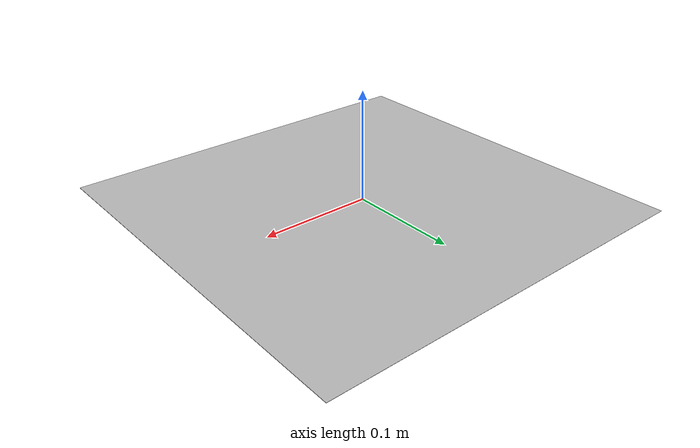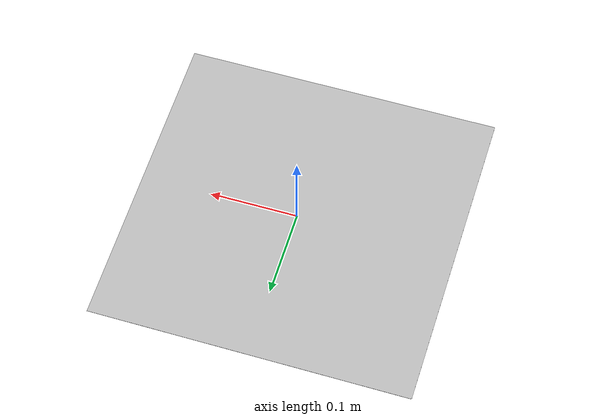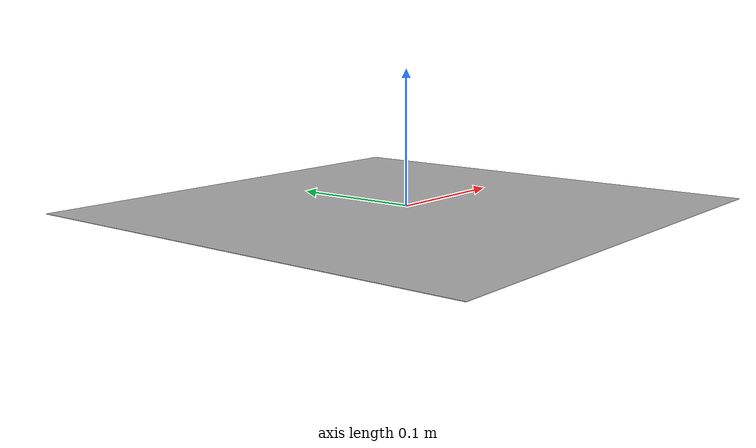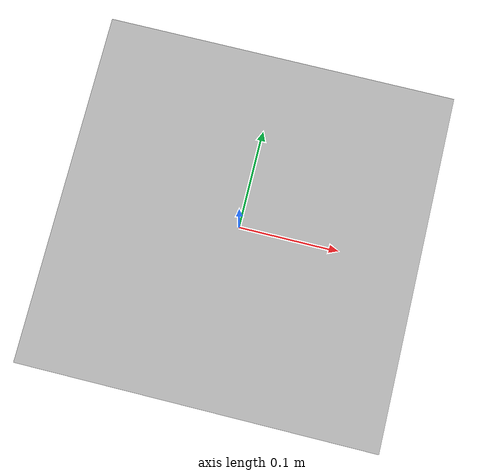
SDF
<?xml version="1.0"?>
<sdf version="1.4">
  <model name="aruco_fam4x4_1000_id25_sdf">
    <pose>0 0 0 0 0 0</pose>
    <static>true</static>
    <link name="link">
      <collision name="collision">
        <geometry>
          <plane>
            <normal>0 0 1</normal>
            <size>0.1 0.1</size>
          </plane>
        </geometry>
        <surface>
          <friction>
            <ode>
              <mu>100</mu>
              <mu2>50</mu2>
            </ode>
          </friction>
        </surface>
      </collision>
      <visual name="visual">
        <cast_shadows>false</cast_shadows>
        <geometry>
          <plane>
            <normal>0 0 1</normal>
            <size>0.36 0.36</size>
          </plane>
        <mesh>
          <uri>model://aruco_fam4x4_1000_id25_sdf/materials/textures/aruco_fam4x4_1000_id25_sdf.dae</uri>
        </mesh>
        </geometry>
        <material>
          <script>
            <uri>model://aruco_fam4x4_1000_id25_sdf/materials/scripts/</uri>
            <uri>model://aruco_fam4x4_1000_id25_sdf/materials/textures/</uri>
            <name>aruco_fam4x4_1000_id25_sdf/Image</name>
          </script>
        </material>
      </visual>
    </link>
  </model>
</sdf>
